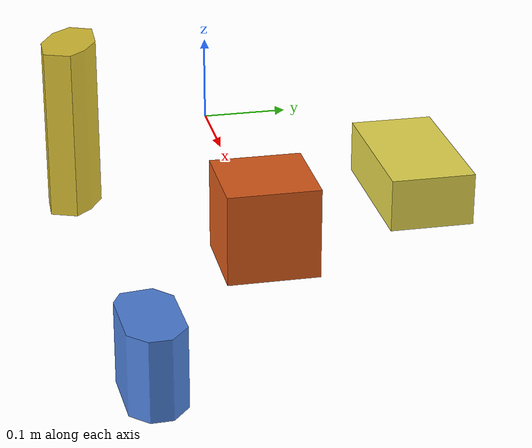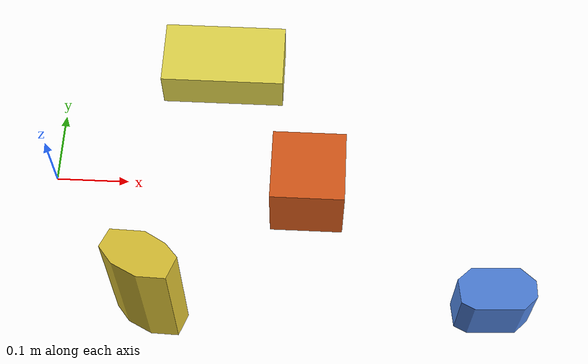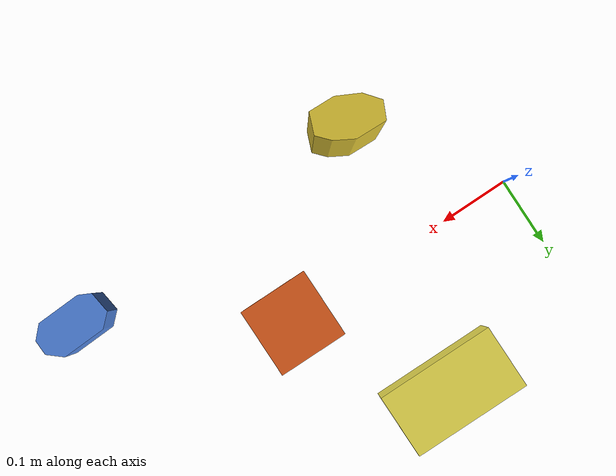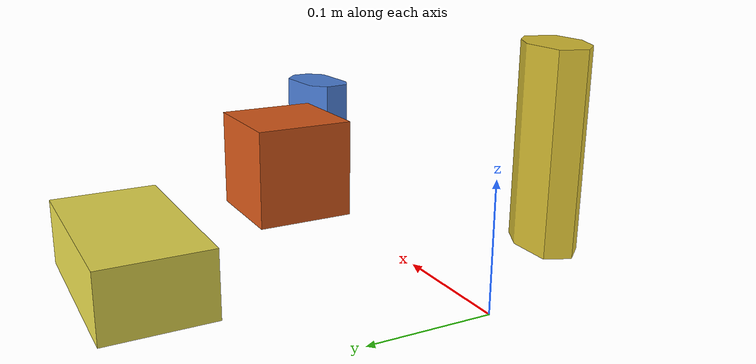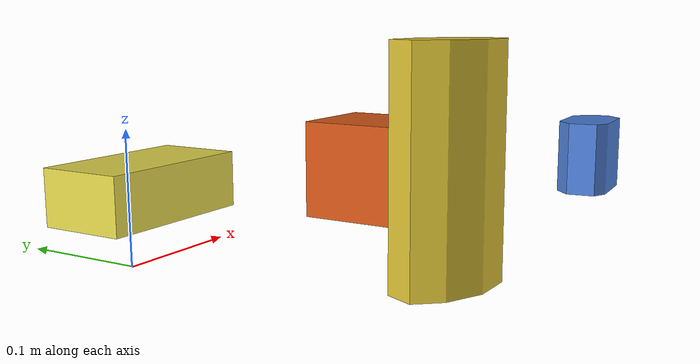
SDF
<?xml version="1.0"?>
<sdf version="1.7">
  <model name="scene_ycb_clutter">
    <static>true</static>
    <link name="obs_box"><pose>0.35 0.0 0.021 0 0 0</pose>
      <visual name="obs_box_v"><geometry><box><size>0.1 0.1 0.1</size></box></geometry>
        <material><diffuse>0.85 0.35 0.1 1.0</diffuse></material></visual>
      <collision name="obs_box_c"><geometry><box><size>0.1 0.1 0.1</size></box></geometry></collision>
    </link>
    <link name="domino_sugar"><pose>0.22 0.20 0.001 0 0 0</pose>
      <visual name="domino_sugar_v"><geometry><box><size>0.175 0.095 0.06</size></box></geometry>
        <material><diffuse>0.9 0.85 0.3 1.0</diffuse></material></visual>
      <collision name="domino_sugar_c"><geometry><box><size>0.175 0.095 0.06</size></box></geometry></collision>
    </link>
    <link name="spam_can"><pose>0.60 -0.16 0.01275 0 0 0</pose>
      <visual name="spam_can_v"><geometry><mesh><uri>ycb_hulls/spam_can.obj</uri></mesh></geometry>
        <material><diffuse>0.3 0.5 0.85 1.0</diffuse></material></visual>
      <collision name="spam_can_c"><geometry><mesh><uri>ycb_hulls/spam_can.obj</uri>
        <drake:declare_convex/></mesh></geometry></collision>
    </link>
    <link name="mustard_bottle"><pose>0.15 -0.18 0.06665 0 0 0</pose>
      <visual name="mustard_bottle_v"><geometry><mesh><uri>ycb_hulls/mustard_bottle.obj</uri></mesh></geometry>
        <material><diffuse>0.85 0.75 0.2 1.0</diffuse></material></visual>
      <collision name="mustard_bottle_c"><geometry><mesh><uri>ycb_hulls/mustard_bottle.obj</uri>
        <drake:declare_convex/></mesh></geometry></collision>
    </link>
  </model>
</sdf>
